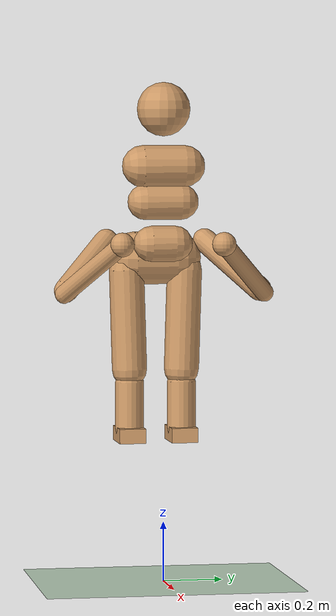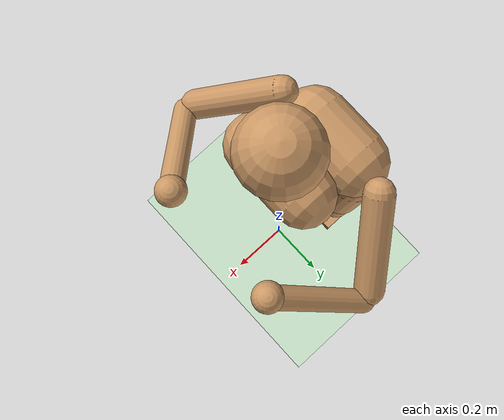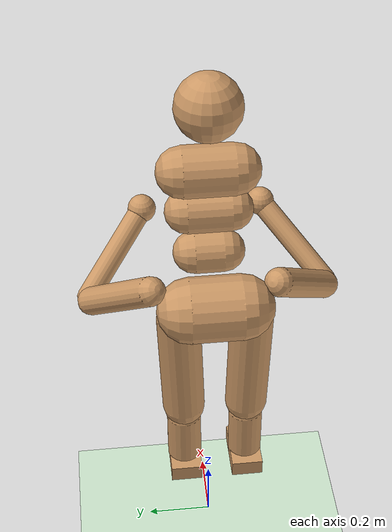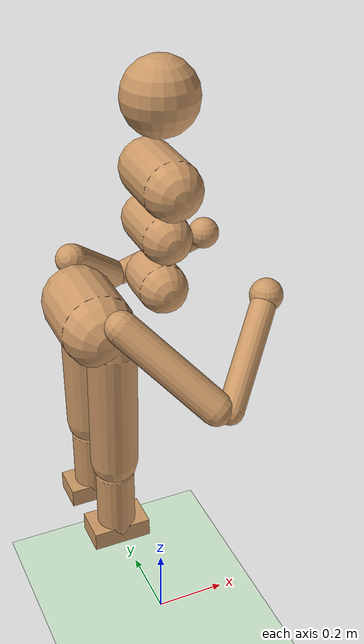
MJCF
<mujoco model="humanoid">
  <compiler angle="radian" inertiafromgeom="true"/>
  <default>
    <joint armature="1" damping="1" limited="true"/>
    <geom conaffinity="1" condim="1" contype="1" margin="0.001" material="geom" rgba="0.8 0.6 0.4 1"/>
    <motor ctrllimited="true" ctrlrange="-0.4 0.4"/>
  </default>
  <option integrator="RK4" iterations="50" solver="PGS" timestep="0.003">
    <flag warmstart="enable"/>
  </option>
  <size nkey="5" nuser_geom="1"/>
  <visual>
    <map fogend="5" fogstart="3"/>
    <quality shadowsize="2048"/>
  </visual>
  <asset>
    <texture builtin="gradient" height="100" rgb1="1 1 1" rgb2="0 0 0" type="skybox" width="100"/>
    <texture builtin="flat" height="1278" mark="cross" markrgb="1 1 1" name="texgeom" random="0.01" rgb1="0.8 0.6 0.4" rgb2="0.8 0.6 0.4" type="cube" width="127"/>
    <texture builtin="checker" height="100" name="texplane" rgb1="0 0 0" rgb2="0.8 0.8 0.8" type="2d" width="100"/>
    <material name="MatPlane" reflectance="0.5" shininess="1" specular="1" texrepeat="60 60" texture="texplane"/>
    <material name="geom" texture="texgeom" texuniform="true"/>
  </asset>
  <worldbody>
    <light cutoff="100" diffuse="1 1 1" dir="-0 0 -1.3" directional="true" exponent="1" pos="0 0 1.3" specular="0.1 0.1 0.1"/>
    <geom conaffinity="1" condim="3" material="MatPlane" name="floor" pos="0 0 0" rgba="0.8 0.9 0.8 1" size="20 20 0.125" type="plane"/>
    <body name="torso" pos="0 0 1.4">
      <camera name="track" mode="trackcom" pos="0 -4 0" xyaxes="1 0 0 0 0 1"/>
      <joint armature="0" damping="0" limited="false" name="root" pos="0 0 0" stiffness="0" type="free"/>
      <geom fromto="0 -0.07 0 0 0.07 0" name="torso1" size="0.07" type="capsule"/>
      <geom name="head" pos="0 0 0.19" size="0.09" type="sphere"/>
      <geom fromto="-0.01 -0.06 -0.12 -0.01 0.06 -0.12" name="uwaist" size="0.06" type="capsule"/>
      <body name="lwaist" pos="-0.01 0 -0.260" quat="1 0 0.707 0">
        <geom fromto="0 -0.04 0 0 0.04 0" name="lwaist" size="0.06" type="capsule"/>
        <joint armature="0.02" axis="0 0 1" damping="5" name="abdomen_z" pos="0 0 0.065" range="-0.75 0.75" stiffness="10" type="hinge"/>
        <joint armature="0.02" axis="0 1 0" damping="5" name="abdomen_y" pos="0 0 0.065" range="-0.75 0.75" stiffness="10" type="hinge"/>
        <body name="pelvis" pos="0 0 -0.165" quat="1 0 -0.707 0">
          <joint armature="0.02" axis="1 0 0" damping="5" name="abdomen_x" pos="0 0 0.1" range="-0.75 0.75" stiffness="10" type="hinge"/>
          <geom fromto="-0.02 -0.07 0 -0.02 0.07 0" name="butt" size="0.09" type="capsule"/>
          <body name="right_thigh" pos="0 -0.1 -0.04">
            <joint armature="0.01" axis="1 0 0" damping="5" name="right_hip_x" pos="0 0 0" range="-0.4 0.4" stiffness="10" type="hinge"/>
            <joint armature="0.01" axis="0 0 1" damping="5" name="right_hip_z" pos="0 0 0" range="-0.4 0.4" stiffness="10" type="hinge"/>
            <joint armature="0.0080" axis="0 1 0" damping="5" name="right_hip_y" pos="0 0 0" range="-1 0.3" stiffness="20" type="hinge"/>
            <geom fromto="0 0 0 0 0.01 -0.34" name="right_thigh1" size="0.06" type="capsule"/>
            <body name="right_shin" pos="0 0.01 -0.403">
              <joint armature="0.0060" axis="0 -1 0" damping="6" name="right_knee" pos="0 0 0.02" range="-2.61 -0.1" stiffness="15" type="hinge"/>
              <geom fromto="0 0 0.02 0 0 -0.14" name="right_shin1" size="0.049" type="capsule"/>
              <body name="right_foot" pos="0 0 -0.188">
                <joint armature="0.0008" axis="0 1 0" damping="3" name="right_ankle_y" pos="0 0 0.11" range="-0.7 0.78" stiffness="6" type="hinge"/>
                <joint armature="0.0006" axis="1 0 0.5" damping="1" name="right_ankle_x" pos="0 0 0.11" range="-0.3 0.3" stiffness="3" type="hinge"/>
                <geom name="right_foot" pos="0 0 0.028" size="0.075 0.045 0.025" type="box"/>
              </body>
            </body>
          </body>
          <body name="left_thigh" pos="0 0.1 -0.04">
            <joint armature="0.01" axis="-1 0 0" damping="5" name="left_hip_x" pos="0 0 0" range="-0.4 0.4" stiffness="10" type="hinge"/>
            <joint armature="0.01" axis="0 0 -1" damping="5" name="left_hip_z" pos="0 0 0" range="-0.4 0.4" stiffness="10" type="hinge"/>
            <joint armature="0.0080" axis="0 1 0" damping="5" name="left_hip_y" pos="0 0 0" range="-1 0.3" stiffness="20" type="hinge"/>
            <geom fromto="0 0 0 0 -0.01 -0.34" name="left_thigh1" size="0.06" type="capsule"/>
            <body name="left_shin" pos="0 -0.01 -0.403">
              <joint armature="0.0060" axis="0 -1 0" damping="6" name="left_knee" pos="0 0 0.02" range="-2.61 -0.1" stiffness="15" type="hinge"/>
              <geom fromto="0 0 0.02 0 0 -0.14" name="left_shin1" size="0.049" type="capsule"/>
              <body name="left_foot" pos="0 0 -0.188">
                <joint armature="0.0008" axis="0 1 0" damping="3" name="left_ankle_y" pos="0 0 0.11" range="-0.7 0.78" stiffness="6" type="hinge"/>
                <joint armature="0.0006" axis="1 0 0.5" damping="1" name="left_ankle_x" pos="0 0 0.11" range="-0.3 0.3" stiffness="3" type="hinge"/>
                <geom name="left_foot" pos="0 0 0.028" size="0.075 0.045 0.025" type="box"/>
              </body>
            </body>
          </body>
          <body name="right_upper_arm" pos="0 -0.17 0.06">
            <joint armature="0.0068" axis="2 1 1" damping="1" name="right_shoulder1" pos="0 0 0" range="-1.6 0.8" stiffness="1" type="hinge"/>
            <joint armature="0.0051" axis="0 -1 1" damping="1" name="right_shoulder2" pos="0 0 0" range="-1.6 0.8" stiffness="1" type="hinge"/>
            <geom fromto="0 0 0 0.16 -0.16 -0.16" name="right_uarm1" size="0.04 0.16" type="capsule"/>
            <body name="right_lower_arm" pos="0.18 -0.18 -0.18">
              <joint armature="0.0028" axis="0 -1 1" damping="0.5" name="right_elbow" pos="0 0 0" range="-1.6 0.8" stiffness="0" type="hinge"/>
              <geom fromto="0.01 0.01 0.01 0.17 0.17 0.17" name="right_larm" size="0.031" type="capsule"/>
              <geom name="right_hand" pos="0.18 0.18 0.18" size="0.04" type="sphere"/>
            </body>
          </body>
          <body name="left_upper_arm" pos="0 0.17 0.06">
            <joint armature="0.0068" axis="2 -1 1" damping="1" name="left_shoulder1" pos="0 0 0" range="-0.8 1.6" stiffness="1" type="hinge"/>
            <joint armature="0.0051" axis="0 1 1" damping="1" name="left_shoulder2" pos="0 0 0" range="-0.8 1.6" stiffness="1" type="hinge"/>
            <geom fromto="0 0 0 0.16 0.16 -0.16" name="left_uarm1" size="0.04 0.16" type="capsule"/>
            <body name="left_lower_arm" pos="0.18 0.18 -0.18">
              <joint armature="0.0028" axis="0 -1 -1" damping="0.5" name="left_elbow" pos="0 0 0" range="-1.6 0.8" stiffness="0" type="hinge"/>
              <geom fromto="0.01 -0.01 0.01 0.17 -0.17 0.17" name="left_larm" size="0.031" type="capsule"/>
              <geom name="left_hand" pos="0.18 -0.18 0.18" size="0.04" type="sphere"/>
            </body>
          </body>
        </body>
      </body>
    </body>
  </worldbody>
  <actuator>
    <motor gear="100" joint="abdomen_y" name="abdomen_y"/>
    <motor gear="100" joint="abdomen_z" name="abdomen_z"/>
    <motor gear="100" joint="abdomen_x" name="abdomen_x"/>
    <motor gear="100" joint="right_hip_x" name="right_hip_x"/>
    <motor gear="100" joint="right_hip_z" name="right_hip_z"/>
    <motor gear="300" joint="right_hip_y" name="right_hip_y"/>
    <motor gear="200" joint="right_knee" name="right_knee"/>
    <motor gear="100" joint="right_ankle_y" name="right_ankle_y"/>
    <motor gear="100" joint="right_ankle_x" name="right_ankle_x"/>
    <motor gear="100" joint="left_hip_x" name="left_hip_x"/>
    <motor gear="100" joint="left_hip_z" name="left_hip_z"/>
    <motor gear="300" joint="left_hip_y" name="left_hip_y"/>
    <motor gear="200" joint="left_knee" name="left_knee"/>
    <motor gear="100" joint="left_ankle_y" name="left_ankle_y"/>
    <motor gear="100" joint="left_ankle_x" name="left_ankle_x"/>
    <motor gear="25" joint="right_shoulder1" name="right_shoulder1"/>
    <motor gear="25" joint="right_shoulder2" name="right_shoulder2"/>
    <motor gear="25" joint="right_elbow" name="right_elbow"/>
    <motor gear="25" joint="left_shoulder1" name="left_shoulder1"/>
    <motor gear="25" joint="left_shoulder2" name="left_shoulder2"/>
    <motor gear="25" joint="left_elbow" name="left_elbow"/>
  </actuator>
</mujoco>
